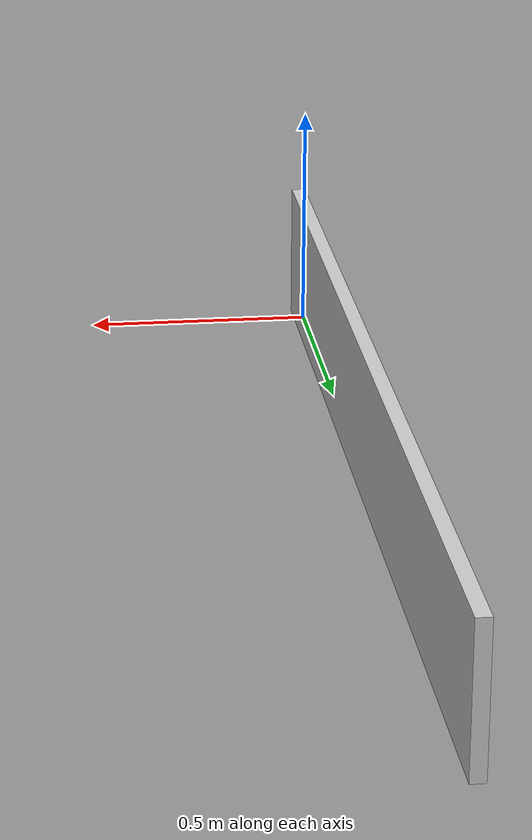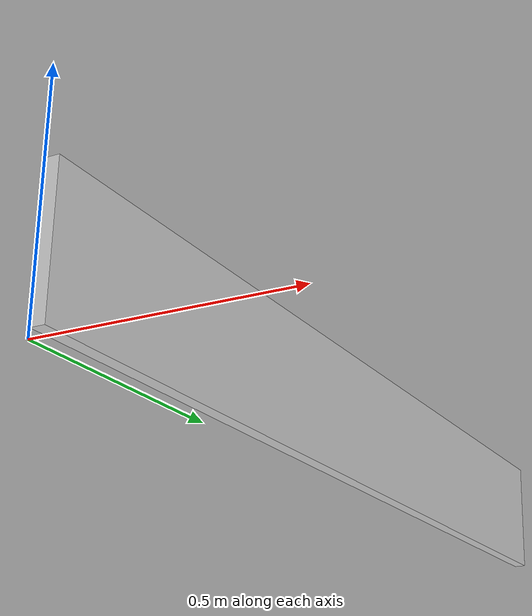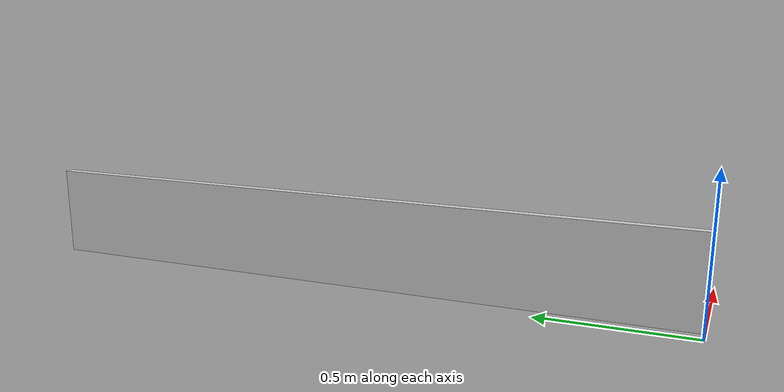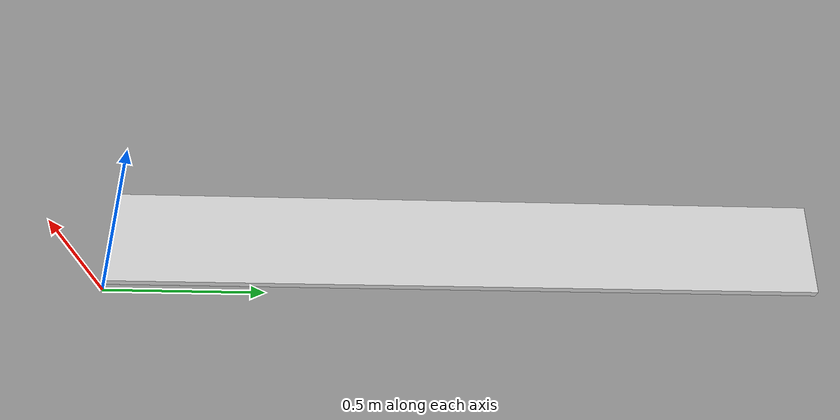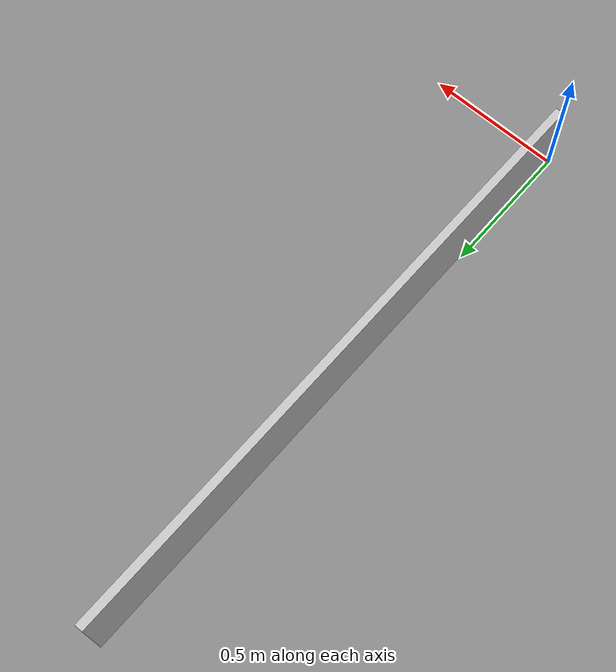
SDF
<?xml version="1.0"?>
<sdf version="1.10">
  <model name="wall_2250_2">
    <static>true</static>
    <link name="link">
      <visual name="visual">
        <geometry>
          <mesh>
            <uri>./models/wall_2250.dae</uri>
          </mesh>
        </geometry>
        <material>
          <ambient>0.8 0.8 0.8 1</ambient>
          <diffuse>0.8 0.8 0.8 1</diffuse>
          <specular>0.1 0.1 0.1 1</specular>
        </material>
      </visual>
      <collision name="collision">
        <geometry>
          <mesh>
            <uri>./models/wall_2250.dae</uri>
          </mesh>
        </geometry>
      </collision>
    </link>
    <pose>0 0 0 0 0 0</pose>
  </model>
</sdf>
